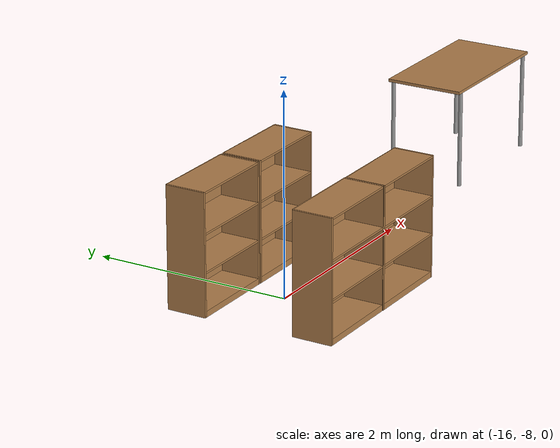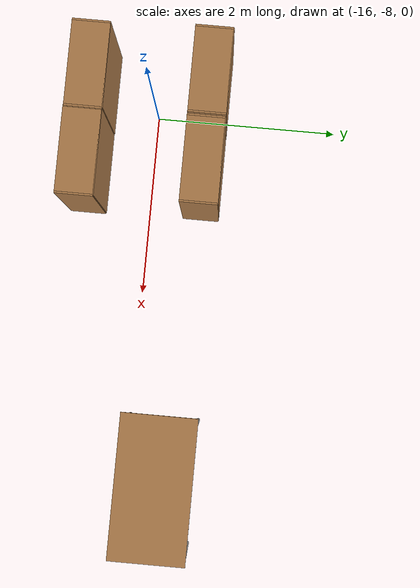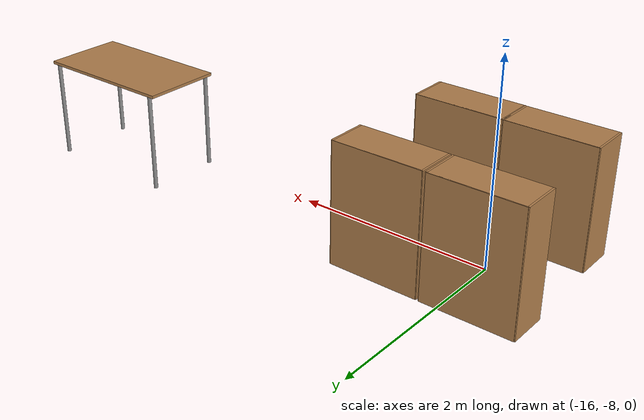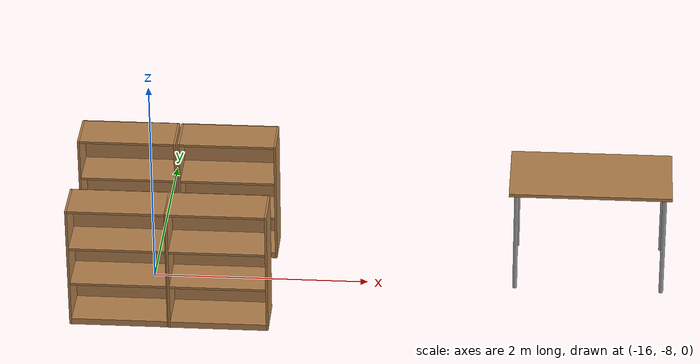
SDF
<sdf version="1.6">
 <world name="default">
  <include><uri>model://sun</uri></include>
  <model name="bookshelf">
   <static>1</static>
   <link name="link">
    <inertial><mass>1</mass></inertial>
    <collision name="back">
     <pose>0 0.005 0.6 0 -0 0</pose>
     <geometry><box><size>0.9 0.01 1.2</size></box></geometry>
    </collision>
    <visual name="visual1">
     <pose>0 0.005 0.6 0 -0 0</pose>
     <geometry><box><size>0.9 0.01 1.2</size></box></geometry>
     <material>
      <script><uri>file://media/materials/scripts/gazebo.material</uri><name>Gazebo/Wood</name></script>
     </material>
    </visual>
    <collision name="left_side">
     <pose>0.45 -0.195 0.6 0 -0 0</pose>
     <geometry><box><size>0.02 0.4 1.2</size></box></geometry>
    </collision>
    <visual name="visual2">
     <pose>0.45 -0.195 0.6 0 -0 0</pose>
     <geometry><box><size>0.02 0.4 1.2</size></box></geometry>
     <material>
      <script><uri>file://media/materials/scripts/gazebo.material</uri><name>Gazebo/Wood</name></script>
     </material>
    </visual>
    <collision name="right_side">
     <pose>-0.45 -0.195 0.6 0 -0 0</pose>
     <geometry><box><size>0.02 0.4 1.2</size></box></geometry>
    </collision>
    <visual name="visual3">
     <pose>-0.45 -0.195 0.6 0 -0 0</pose>
     <geometry><box><size>0.02 0.4 1.2</size></box></geometry>
     <material>
      <script><uri>file://media/materials/scripts/gazebo.material</uri><name>Gazebo/Wood</name></script>
     </material>
    </visual>
    <collision name="bottom">
     <pose>0 -0.195 0.03 0 -0 0</pose>
     <geometry><box><size>0.88 0.4 0.06</size></box></geometry>
    </collision>
    <visual name="visual4">
     <pose>0 -0.195 0.03 0 -0 0</pose>
     <geometry><box><size>0.88 0.4 0.06</size></box></geometry>
     <material>
      <script><uri>file://media/materials/scripts/gazebo.material</uri><name>Gazebo/Wood</name></script>
     </material>
    </visual>
    <collision name="top">
     <pose>0 -0.195 1.19 0 -0 0</pose>
     <geometry><box><size>0.88 0.4 0.02</size></box></geometry>
    </collision>
    <visual name="visual5">
     <pose>0 -0.195 1.19 0 -0 0</pose>
     <geometry><box><size>0.88 0.4 0.02</size></box></geometry>
     <material>
      <script><uri>file://media/materials/scripts/gazebo.material</uri><name>Gazebo/Wood</name></script>
     </material>
    </visual>
    <collision name="low_shelf">
     <pose>0 -0.195 0.43 0 -0 0</pose>
     <geometry><box><size>0.88 0.4 0.02</size></box></geometry>
    </collision>
    <visual name="visual6">
     <pose>0 -0.195 0.43 0 -0 0</pose>
     <geometry><box><size>0.88 0.4 0.02</size></box></geometry>
     <material>
      <script><uri>file://media/materials/scripts/gazebo.material</uri><name>Gazebo/Wood</name></script>
     </material>
    </visual>
    <collision name="high_shelf">
     <pose>0 -0.195 0.8 0 -0 0</pose>
     <geometry><box><size>0.88 0.4 0.02</size></box></geometry>
    </collision>
    <visual name="visual7">
     <pose>0 -0.195 0.8 0 -0 0</pose>
     <geometry><box><size>0.88 0.4 0.02</size></box></geometry>
     <material>
      <script><uri>file://media/materials/scripts/gazebo.material</uri><name>Gazebo/Wood</name></script>
     </material>
    </visual>
   </link>
   <pose>-16.2758 -7.22621 0 0 -0 0</pose>
  </model>
  <model name="bookshelf_0">
   <static>1</static>
   <link name="link">
    <inertial><mass>1</mass></inertial>
    <collision name="back">
     <pose>0 0.005 0.6 0 -0 0</pose>
     <geometry><box><size>0.9 0.01 1.2</size></box></geometry>
    </collision>
    <visual name="visual1">
     <pose>0 0.005 0.6 0 -0 0</pose>
     <geometry><box><size>0.9 0.01 1.2</size></box></geometry>
     <material>
      <script><uri>file://media/materials/scripts/gazebo.material</uri><name>Gazebo/Wood</name></script>
     </material>
    </visual>
    <collision name="left_side">
     <pose>0.45 -0.195 0.6 0 -0 0</pose>
     <geometry><box><size>0.02 0.4 1.2</size></box></geometry>
    </collision>
    <visual name="visual2">
     <pose>0.45 -0.195 0.6 0 -0 0</pose>
     <geometry><box><size>0.02 0.4 1.2</size></box></geometry>
     <material>
      <script><uri>file://media/materials/scripts/gazebo.material</uri><name>Gazebo/Wood</name></script>
     </material>
    </visual>
    <collision name="right_side">
     <pose>-0.45 -0.195 0.6 0 -0 0</pose>
     <geometry><box><size>0.02 0.4 1.2</size></box></geometry>
    </collision>
    <visual name="visual3">
     <pose>-0.45 -0.195 0.6 0 -0 0</pose>
     <geometry><box><size>0.02 0.4 1.2</size></box></geometry>
     <material>
      <script><uri>file://media/materials/scripts/gazebo.material</uri><name>Gazebo/Wood</name></script>
     </material>
    </visual>
    <collision name="bottom">
     <pose>0 -0.195 0.03 0 -0 0</pose>
     <geometry><box><size>0.88 0.4 0.06</size></box></geometry>
    </collision>
    <visual name="visual4">
     <pose>0 -0.195 0.03 0 -0 0</pose>
     <geometry><box><size>0.88 0.4 0.06</size></box></geometry>
     <material>
      <script><uri>file://media/materials/scripts/gazebo.material</uri><name>Gazebo/Wood</name></script>
     </material>
    </visual>
    <collision name="top">
     <pose>0 -0.195 1.19 0 -0 0</pose>
     <geometry><box><size>0.88 0.4 0.02</size></box></geometry>
    </collision>
    <visual name="visual5">
     <pose>0 -0.195 1.19 0 -0 0</pose>
     <geometry><box><size>0.88 0.4 0.02</size></box></geometry>
     <material>
      <script><uri>file://media/materials/scripts/gazebo.material</uri><name>Gazebo/Wood</name></script>
     </material>
    </visual>
    <collision name="low_shelf">
     <pose>0 -0.195 0.43 0 -0 0</pose>
     <geometry><box><size>0.88 0.4 0.02</size></box></geometry>
    </collision>
    <visual name="visual6">
     <pose>0 -0.195 0.43 0 -0 0</pose>
     <geometry><box><size>0.88 0.4 0.02</size></box></geometry>
     <material>
      <script><uri>file://media/materials/scripts/gazebo.material</uri><name>Gazebo/Wood</name></script>
     </material>
    </visual>
    <collision name="high_shelf">
     <pose>0 -0.195 0.8 0 -0 0</pose>
     <geometry><box><size>0.88 0.4 0.02</size></box></geometry>
    </collision>
    <visual name="visual7">
     <pose>0 -0.195 0.8 0 -0 0</pose>
     <geometry><box><size>0.88 0.4 0.02</size></box></geometry>
     <material>
      <script><uri>file://media/materials/scripts/gazebo.material</uri><name>Gazebo/Wood</name></script>
     </material>
    </visual>
   </link>
   <pose>-16.226 -8.50075 0 0 -0 0</pose>
  </model>
  <model name="bookshelf_1">
   <static>1</static>
   <link name="link">
    <inertial><mass>1</mass></inertial>
    <collision name="back">
     <pose>0 0.005 0.6 0 -0 0</pose>
     <geometry><box><size>0.9 0.01 1.2</size></box></geometry>
    </collision>
    <visual name="visual1">
     <pose>0 0.005 0.6 0 -0 0</pose>
     <geometry><box><size>0.9 0.01 1.2</size></box></geometry>
     <material>
      <script><uri>file://media/materials/scripts/gazebo.material</uri><name>Gazebo/Wood</name></script>
     </material>
    </visual>
    <collision name="left_side">
     <pose>0.45 -0.195 0.6 0 -0 0</pose>
     <geometry><box><size>0.02 0.4 1.2</size></box></geometry>
    </collision>
    <visual name="visual2">
     <pose>0.45 -0.195 0.6 0 -0 0</pose>
     <geometry><box><size>0.02 0.4 1.2</size></box></geometry>
     <material>
      <script><uri>file://media/materials/scripts/gazebo.material</uri><name>Gazebo/Wood</name></script>
     </material>
    </visual>
    <collision name="right_side">
     <pose>-0.45 -0.195 0.6 0 -0 0</pose>
     <geometry><box><size>0.02 0.4 1.2</size></box></geometry>
    </collision>
    <visual name="visual3">
     <pose>-0.45 -0.195 0.6 0 -0 0</pose>
     <geometry><box><size>0.02 0.4 1.2</size></box></geometry>
     <material>
      <script><uri>file://media/materials/scripts/gazebo.material</uri><name>Gazebo/Wood</name></script>
     </material>
    </visual>
    <collision name="bottom">
     <pose>0 -0.195 0.03 0 -0 0</pose>
     <geometry><box><size>0.88 0.4 0.06</size></box></geometry>
    </collision>
    <visual name="visual4">
     <pose>0 -0.195 0.03 0 -0 0</pose>
     <geometry><box><size>0.88 0.4 0.06</size></box></geometry>
     <material>
      <script><uri>file://media/materials/scripts/gazebo.material</uri><name>Gazebo/Wood</name></script>
     </material>
    </visual>
    <collision name="top">
     <pose>0 -0.195 1.19 0 -0 0</pose>
     <geometry><box><size>0.88 0.4 0.02</size></box></geometry>
    </collision>
    <visual name="visual5">
     <pose>0 -0.195 1.19 0 -0 0</pose>
     <geometry><box><size>0.88 0.4 0.02</size></box></geometry>
     <material>
      <script><uri>file://media/materials/scripts/gazebo.material</uri><name>Gazebo/Wood</name></script>
     </material>
    </visual>
    <collision name="low_shelf">
     <pose>0 -0.195 0.43 0 -0 0</pose>
     <geometry><box><size>0.88 0.4 0.02</size></box></geometry>
    </collision>
    <visual name="visual6">
     <pose>0 -0.195 0.43 0 -0 0</pose>
     <geometry><box><size>0.88 0.4 0.02</size></box></geometry>
     <material>
      <script><uri>file://media/materials/scripts/gazebo.material</uri><name>Gazebo/Wood</name></script>
     </material>
    </visual>
    <collision name="high_shelf">
     <pose>0 -0.195 0.8 0 -0 0</pose>
     <geometry><box><size>0.88 0.4 0.02</size></box></geometry>
    </collision>
    <visual name="visual7">
     <pose>0 -0.195 0.8 0 -0 0</pose>
     <geometry><box><size>0.88 0.4 0.02</size></box></geometry>
     <material>
      <script><uri>file://media/materials/scripts/gazebo.material</uri><name>Gazebo/Wood</name></script>
     </material>
    </visual>
   </link>
   <pose>-15.3406 -7.22752 0 0 -0 0</pose>
  </model>
  <model name="bookshelf_2">
   <static>1</static>
   <link name="link">
    <inertial><mass>1</mass></inertial>
    <collision name="back">
     <pose>0 0.005 0.6 0 -0 0</pose>
     <geometry><box><size>0.9 0.01 1.2</size></box></geometry>
    </collision>
    <visual name="visual1">
     <pose>0 0.005 0.6 0 -0 0</pose>
     <geometry><box><size>0.9 0.01 1.2</size></box></geometry>
     <material>
      <script><uri>file://media/materials/scripts/gazebo.material</uri><name>Gazebo/Wood</name></script>
     </material>
    </visual>
    <collision name="left_side">
     <pose>0.45 -0.195 0.6 0 -0 0</pose>
     <geometry><box><size>0.02 0.4 1.2</size></box></geometry>
    </collision>
    <visual name="visual2">
     <pose>0.45 -0.195 0.6 0 -0 0</pose>
     <geometry><box><size>0.02 0.4 1.2</size></box></geometry>
     <material>
      <script><uri>file://media/materials/scripts/gazebo.material</uri><name>Gazebo/Wood</name></script>
     </material>
    </visual>
    <collision name="right_side">
     <pose>-0.45 -0.195 0.6 0 -0 0</pose>
     <geometry><box><size>0.02 0.4 1.2</size></box></geometry>
    </collision>
    <visual name="visual3">
     <pose>-0.45 -0.195 0.6 0 -0 0</pose>
     <geometry><box><size>0.02 0.4 1.2</size></box></geometry>
     <material>
      <script><uri>file://media/materials/scripts/gazebo.material</uri><name>Gazebo/Wood</name></script>
     </material>
    </visual>
    <collision name="bottom">
     <pose>0 -0.195 0.03 0 -0 0</pose>
     <geometry><box><size>0.88 0.4 0.06</size></box></geometry>
    </collision>
    <visual name="visual4">
     <pose>0 -0.195 0.03 0 -0 0</pose>
     <geometry><box><size>0.88 0.4 0.06</size></box></geometry>
     <material>
      <script><uri>file://media/materials/scripts/gazebo.material</uri><name>Gazebo/Wood</name></script>
     </material>
    </visual>
    <collision name="top">
     <pose>0 -0.195 1.19 0 -0 0</pose>
     <geometry><box><size>0.88 0.4 0.02</size></box></geometry>
    </collision>
    <visual name="visual5">
     <pose>0 -0.195 1.19 0 -0 0</pose>
     <geometry><box><size>0.88 0.4 0.02</size></box></geometry>
     <material>
      <script><uri>file://media/materials/scripts/gazebo.material</uri><name>Gazebo/Wood</name></script>
     </material>
    </visual>
    <collision name="low_shelf">
     <pose>0 -0.195 0.43 0 -0 0</pose>
     <geometry><box><size>0.88 0.4 0.02</size></box></geometry>
    </collision>
    <visual name="visual6">
     <pose>0 -0.195 0.43 0 -0 0</pose>
     <geometry><box><size>0.88 0.4 0.02</size></box></geometry>
     <material>
      <script><uri>file://media/materials/scripts/gazebo.material</uri><name>Gazebo/Wood</name></script>
     </material>
    </visual>
    <collision name="high_shelf">
     <pose>0 -0.195 0.8 0 -0 0</pose>
     <geometry><box><size>0.88 0.4 0.02</size></box></geometry>
    </collision>
    <visual name="visual7">
     <pose>0 -0.195 0.8 0 -0 0</pose>
     <geometry><box><size>0.88 0.4 0.02</size></box></geometry>
     <material>
      <script><uri>file://media/materials/scripts/gazebo.material</uri><name>Gazebo/Wood</name></script>
     </material>
    </visual>
   </link>
   <pose>-15.316 -8.50436 0 0 -0 0</pose>
  </model>
  <model name="table">
   <static>1</static>
   <link name="link">
    <collision name="surface">
     <pose>0 0 1 0 -0 0</pose>
     <geometry><box><size>1.5 0.8 0.03</size></box></geometry>
     <surface><friction><ode><mu>0.6</mu><mu2>0.6</mu2></ode></friction></surface>
    </collision>
    <visual name="visual1">
     <pose>0 0 1 0 -0 0</pose>
     <geometry><box><size>1.5 0.8 0.03</size></box></geometry>
     <material>
      <script><uri>file://media/materials/scripts/gazebo.material</uri><name>Gazebo/Wood</name></script>
     </material>
    </visual>
    <collision name="front_left_leg">
     <pose>0.68 0.38 0.5 0 -0 0</pose>
     <geometry><cylinder><radius>0.02</radius><length>1</length></cylinder></geometry>
    </collision>
    <visual name="front_left_leg">
     <pose>0.68 0.38 0.5 0 -0 0</pose>
     <geometry><cylinder><radius>0.02</radius><length>1</length></cylinder></geometry>
     <material>
      <script><uri>file://media/materials/scripts/gazebo.material</uri><name>Gazebo/Grey</name></script>
     </material>
    </visual>
    <collision name="front_right_leg">
     <pose>0.68 -0.38 0.5 0 -0 0</pose>
     <geometry><cylinder><radius>0.02</radius><length>1</length></cylinder></geometry>
    </collision>
    <visual name="front_right_leg">
     <pose>0.68 -0.38 0.5 0 -0 0</pose>
     <geometry><cylinder><radius>0.02</radius><length>1</length></cylinder></geometry>
     <material>
      <script><uri>file://media/materials/scripts/gazebo.material</uri><name>Gazebo/Grey</name></script>
     </material>
    </visual>
    <collision name="back_right_leg">
     <pose>-0.68 -0.38 0.5 0 -0 0</pose>
     <geometry><cylinder><radius>0.02</radius><length>1</length></cylinder></geometry>
    </collision>
    <visual name="back_right_leg">
     <pose>-0.68 -0.38 0.5 0 -0 0</pose>
     <geometry><cylinder><radius>0.02</radius><length>1</length></cylinder></geometry>
     <material>
      <script><uri>file://media/materials/scripts/gazebo.material</uri><name>Gazebo/Grey</name></script>
     </material>
    </visual>
    <collision name="back_left_leg">
     <pose>-0.68 0.38 0.5 0 -0 0</pose>
     <geometry><cylinder><radius>0.02</radius><length>1</length></cylinder></geometry>
    </collision>
    <visual name="back_left_leg">
     <pose>-0.68 0.38 0.5 0 -0 0</pose>
     <geometry><cylinder><radius>0.02</radius><length>1</length></cylinder></geometry>
     <material>
      <script><uri>file://media/materials/scripts/gazebo.material</uri><name>Gazebo/Grey</name></script>
     </material>
    </visual>
   </link>
   <pose>-11.9481 -7.62309 0 0 -0 0</pose>
  </model>
 </world>
</sdf>
